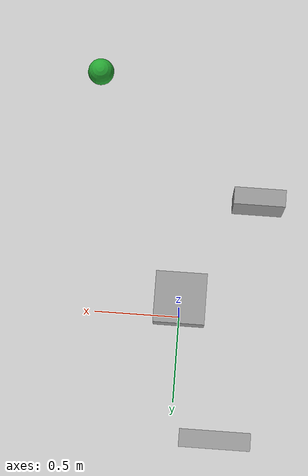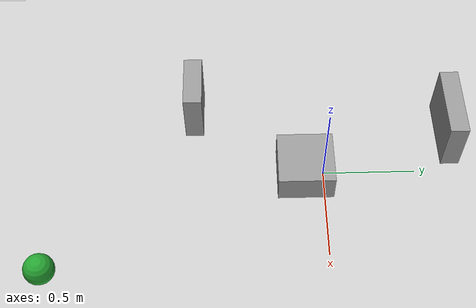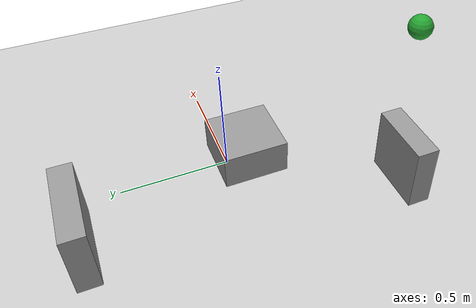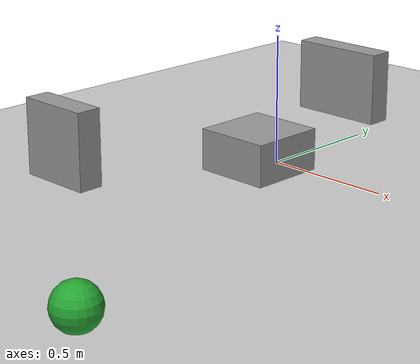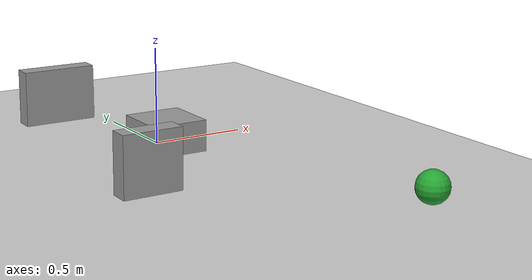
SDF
<sdf version="1.7">
 <world name="default">
  <light name="sun" type="directional">
   <pose>0 0 10 0 -0 0</pose>
   <diffuse>0.8 0.8 0.8 1</diffuse>
   <specular>0.2 0.2 0.2 1</specular>
   <attenuation>
    <range>1000</range>
    <constant>0.9</constant>
    <linear>0.01</linear>
    <quadratic>0.001</quadratic>
   </attenuation>
   <direction>-0.5 0.1 -0.9</direction>
   <spot><inner_angle>0</inner_angle><outer_angle>0</outer_angle><falloff>0</falloff></spot>
  </light>
  <model name="ground_plane">
   <static>1</static>
   <link name="link">
    <collision name="collision">
     <geometry><plane><normal>0 0 1</normal><size>100 100</size></plane></geometry>
     <surface>
      <contact><collide_bitmask>65535</collide_bitmask></contact>
      <friction><ode><mu>100</mu><mu2>50</mu2></ode></friction>
     </surface>
    </collision>
    <visual name="visual">
     <cast_shadows>0</cast_shadows>
     <geometry><plane><normal>0 0 1</normal><size>100 100</size></plane></geometry>
     <material>
      <script><uri>file://media/materials/scripts/gazebo.material</uri><name>Gazebo/Grey</name></script>
     </material>
    </visual>
   </link>
  </model>
  <gravity>0 0 -9.8</gravity>
  <magnetic_field>6e-06 2.3e-05 -4.2e-05</magnetic_field>
  <atmosphere type="adiabatic"/>
  <physics type="ode">
   <max_step_size>0.001</max_step_size>
   <real_time_factor>1</real_time_factor>
   <real_time_update_rate>1000</real_time_update_rate>
  </physics>
  <scene><ambient>0.4 0.4 0.4 1</ambient><background>0.7 0.7 0.7 1</background><shadows>1</shadows></scene>
  <spherical_coordinates>
   <surface_model>EARTH_WGS84</surface_model>
   <latitude_deg>0</latitude_deg>
   <longitude_deg>0</longitude_deg>
   <elevation>0</elevation>
   <heading_deg>0</heading_deg>
  </spherical_coordinates>
  <model name="moving_sphere">
   <link name="link">
    <inertial>
     <mass>0.0001</mass>
     <inertia><ixx>1e-06</ixx><iyy>1e-06</iyy><izz>1e-06</izz><ixy>0</ixy><ixz>0</ixz><iyz>0</iyz></inertia>
    </inertial>
    <self_collide>1</self_collide>
    <visual name="visual">
     <geometry><sphere><radius>0.08</radius></sphere></geometry>
     <material>
      <script><name>Gazebo/Green</name><uri>file://media/materials/scripts/gazebo.material</uri></script>
     </material>
    </visual>
    <collision name="collision"><geometry><sphere><radius>0.07</radius></sphere></geometry></collision>
    <sensor name="bumper_sensor" type="contact">
     <update_rate>50</update_rate>
     <always_on>1</always_on>
     <visualize>1</visualize>
     <contact><collision>collision</collision><topic>__default_topic__</topic></contact>
     <plugin name="bumper_plugin" filename="libgazebo_ros_bumper.so">
      <ros><namespace>/gazebo</namespace></ros>
      <frame_name>bumper_frame</frame_name>
      <topic_name>bumper_data</topic_name>
     </plugin>
    </sensor>
   </link>
   <static>0</static>
   <pose>0.581309 -1.45905 0.07 0 -0 0</pose>
  </model>
  <model name="shebei">
   <link name="link">
    <inertial>
     <mass>0.0001</mass>
     <inertia>
      <ixx>1.667e-05</ixx>
      <ixy>0</ixy>
      <ixz>0</ixz>
      <iyy>1.667e-05</iyy>
      <iyz>0</iyz>
      <izz>1.667e-05</izz>
     </inertia>
    </inertial>
    <visual name="visual">
     <geometry><box><size>0.3 0.3 0.2</size></box></geometry>
     <material>
      <script><name>Gazebo/Grey</name><uri>file://media/materials/scripts/gazebo.material</uri></script>
      <shader type="pixel"><normal_map>__default__</normal_map></shader>
      <ambient>0.3 0.3 0.3 1</ambient>
      <diffuse>0.7 0.7 0.7 1</diffuse>
      <specular>0.01 0.01 0.01 1</specular>
      <emissive>0 0 0 1</emissive>
     </material>
     <pose>0 0 -0.04 0 -0 0</pose>
    </visual>
    <collision name="collision">
     <geometry><box><size>0.3 0.3 0.2</size></box></geometry>
     <surface>
      <friction>
       <ode><mu>1</mu><mu2>1</mu2><fdir1>0 0 0</fdir1><slip1>0</slip1><slip2>0</slip2></ode>
       <torsional>
        <coefficient>1</coefficient>
        <patch_radius>0</patch_radius>
        <surface_radius>0</surface_radius>
        <use_patch_radius>1</use_patch_radius>
        <ode><slip>0</slip></ode>
       </torsional>
      </friction>
      <bounce><restitution_coefficient>0</restitution_coefficient><threshold>1e+06</threshold></bounce>
      <contact>
       <collide_without_contact>0</collide_without_contact>
       <collide_without_contact_bitmask>1</collide_without_contact_bitmask>
       <collide_bitmask>1</collide_bitmask>
       <ode>
        <soft_cfm>0</soft_cfm>
        <soft_erp>0.2</soft_erp>
        <kp>1e+13</kp>
        <kd>1</kd>
        <max_vel>0.01</max_vel>
        <min_depth>0</min_depth>
       </ode>
       <bullet>
        <split_impulse>1</split_impulse>
        <split_impulse_penetration_threshold>-0.01</split_impulse_penetration_threshold>
        <soft_cfm>0</soft_cfm>
        <soft_erp>0.2</soft_erp>
        <kp>1e+13</kp>
        <kd>1</kd>
       </bullet>
      </contact>
     </surface>
    </collision>
   </link>
   <static>1</static>
   <pose>-0.0 -0.10 0.1 0 -0 0</pose>
  </model>
  <model name="pingmu">
   <link name="link">
    <inertial>
     <mass>0.0001</mass>
     <inertia><ixx>8.3e-07</ixx><ixy>0</ixy><ixz>0</ixz><iyy>1.5e-06</iyy><iyz>0</iyz><izz>8.3e-07</izz></inertia>
    </inertial>
    <visual name="visual">
     <geometry><box><size>0.3 0.1 0.3</size></box></geometry>
     <material>
      <script><name>Gazebo/Grey</name><uri>file://media/materials/scripts/gazebo.material</uri></script>
      <shader type="pixel"><normal_map>__default__</normal_map></shader>
      <ambient>0.3 0.3 0.3 1</ambient>
      <diffuse>0.7 0.7 0.7 1</diffuse>
      <specular>0.01 0.01 0.01 1</specular>
      <emissive>0 0 0 1</emissive>
     </material>
    </visual>
    <collision name="collision">
     <geometry><box><size>0.3 0.1 0.3</size></box></geometry>
     <surface>
      <friction>
       <ode><mu>1</mu><mu2>1</mu2><fdir1>0 0 0</fdir1><slip1>0</slip1><slip2>0</slip2></ode>
       <torsional>
        <coefficient>1</coefficient>
        <patch_radius>0</patch_radius>
        <surface_radius>0</surface_radius>
        <use_patch_radius>1</use_patch_radius>
        <ode><slip>0</slip></ode>
       </torsional>
      </friction>
      <bounce><restitution_coefficient>0</restitution_coefficient><threshold>1e+06</threshold></bounce>
      <contact>
       <collide_without_contact>0</collide_without_contact>
       <collide_without_contact_bitmask>1</collide_without_contact_bitmask>
       <collide_bitmask>1</collide_bitmask>
       <ode>
        <soft_cfm>0</soft_cfm>
        <soft_erp>0.2</soft_erp>
        <kp>1e+13</kp>
        <kd>1</kd>
        <max_vel>0.01</max_vel>
        <min_depth>0</min_depth>
       </ode>
       <bullet>
        <split_impulse>1</split_impulse>
        <split_impulse_penetration_threshold>-0.01</split_impulse_penetration_threshold>
        <soft_cfm>0</soft_cfm>
        <soft_erp>0.2</soft_erp>
        <kp>1e+13</kp>
        <kd>1</kd>
       </bullet>
      </contact>
     </surface>
    </collision>
   </link>
   <static>1</static>
   <pose>-0.42 -0.7 0.15 0 -0 0</pose>
  </model>
  <model name="zawu">
   <link name="link">
    <inertial>
     <mass>0.0001</mass>
     <inertia>
      <ixx>0.166667</ixx>
      <ixy>0</ixy>
      <ixz>0</ixz>
      <iyy>0.166667</iyy>
      <iyz>0</iyz>
      <izz>0.166667</izz>
     </inertia>
    </inertial>
    <visual name="visual">
     <geometry><box><size>0.4 0.1 0.3</size></box></geometry>
     <material>
      <script><name>Gazebo/Grey</name><uri>file://media/materials/scripts/gazebo.material</uri></script>
      <shader type="pixel"><normal_map>__default__</normal_map></shader>
      <ambient>0.3 0.3 0.3 1</ambient>
      <diffuse>0.7 0.7 0.7 1</diffuse>
      <specular>0.01 0.01 0.01 1</specular>
      <emissive>0 0 0 1</emissive>
     </material>
    </visual>
    <collision name="collision">
     <geometry><box><size>0.4 0.1 0.3</size></box></geometry>
     <surface>
      <friction>
       <ode><mu>1</mu><mu2>1</mu2><fdir1>0 0 0</fdir1><slip1>0</slip1><slip2>0</slip2></ode>
       <torsional>
        <coefficient>1</coefficient>
        <patch_radius>0</patch_radius>
        <surface_radius>0</surface_radius>
        <use_patch_radius>1</use_patch_radius>
        <ode><slip>0</slip></ode>
       </torsional>
      </friction>
      <bounce><restitution_coefficient>0</restitution_coefficient><threshold>1e+06</threshold></bounce>
      <contact>
       <collide_without_contact>0</collide_without_contact>
       <collide_without_contact_bitmask>1</collide_without_contact_bitmask>
       <collide_bitmask>1</collide_bitmask>
       <ode>
        <soft_cfm>0</soft_cfm>
        <soft_erp>0.2</soft_erp>
        <kp>1e+13</kp>
        <kd>1</kd>
        <max_vel>0.01</max_vel>
        <min_depth>0</min_depth>
       </ode>
       <bullet>
        <split_impulse>1</split_impulse>
        <split_impulse_penetration_threshold>-0.01</split_impulse_penetration_threshold>
        <soft_cfm>0</soft_cfm>
        <soft_erp>0.2</soft_erp>
        <kp>1e+13</kp>
        <kd>1</kd>
       </bullet>
      </contact>
     </surface>
    </collision>
   </link>
   <static>1</static>
   <pose>-0.25 0.7 0.15 0 -0 0</pose>
  </model>
 </world>
</sdf>
